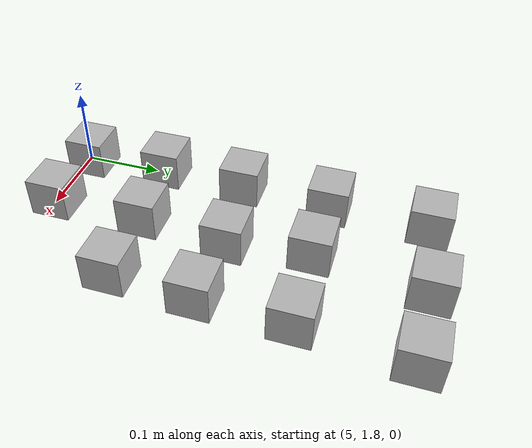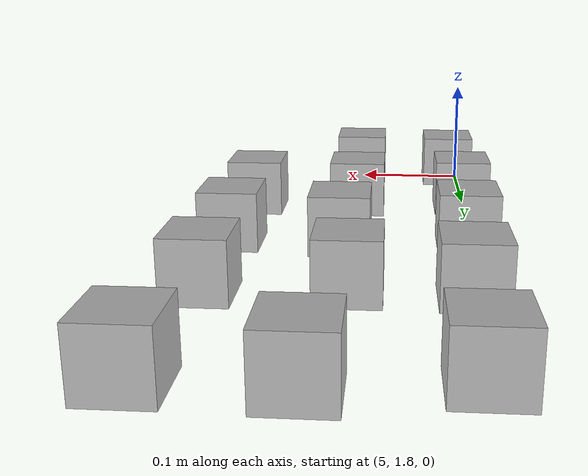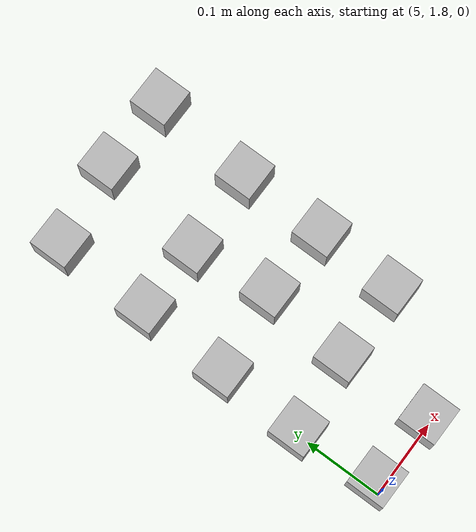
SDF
<sdf version="1.6">
 <world name="default">
  <model name="at0_12">
   <static>0</static>
   <link name="link">
    <inertial>
     <mass>0.01</mass>
     <inertia><ixx>4e-05</ixx><ixy>0</ixy><ixz>0</ixz><iyy>4e-05</iyy><iyz>0</iyz><izz>4e-05</izz></inertia>
    </inertial>
    <visual name="visual">
     <geometry><box><size>0.05 0.05 0.05</size></box></geometry>
     <material>
      <script>
       <uri>model://at0/materials/scripts</uri>
       <uri>model://at0/materials/textures</uri>
       <name>at0/Diffuse</name>
      </script>
     </material>
    </visual>
    <collision name="collision">
     <geometry><box><size>0.05 0.05 0.05</size></box></geometry>
     <surface><friction><ode><mu>0.8</mu><mu2>0.7</mu2></ode></friction></surface>
    </collision>
   </link>
   <pose>5.00629 2.0256 0.025 0 -0 0</pose>
  </model>
  <model name="at0_14">
   <static>0</static>
   <link name="link">
    <inertial>
     <mass>0.01</mass>
     <inertia><ixx>4e-05</ixx><ixy>0</ixy><ixz>0</ixz><iyy>4e-05</iyy><iyz>0</iyz><izz>4e-05</izz></inertia>
    </inertial>
    <visual name="visual">
     <geometry><box><size>0.05 0.05 0.05</size></box></geometry>
     <material>
      <script>
       <uri>model://at0/materials/scripts</uri>
       <uri>model://at0/materials/textures</uri>
       <name>at0/Diffuse</name>
      </script>
     </material>
    </visual>
    <collision name="collision">
     <geometry><box><size>0.05 0.05 0.05</size></box></geometry>
     <surface><friction><ode><mu>0.8</mu><mu2>0.7</mu2></ode></friction></surface>
    </collision>
   </link>
   <pose>5.11198 2.03767 0.025 0 -0 0</pose>
  </model>
  <model name="at0_16">
   <static>0</static>
   <link name="link">
    <inertial>
     <mass>0.01</mass>
     <inertia><ixx>4e-05</ixx><ixy>0</ixy><ixz>0</ixz><iyy>4e-05</iyy><iyz>0</iyz><izz>4e-05</izz></inertia>
    </inertial>
    <visual name="visual">
     <geometry><box><size>0.05 0.05 0.05</size></box></geometry>
     <material>
      <script>
       <uri>model://at0/materials/scripts</uri>
       <uri>model://at0/materials/textures</uri>
       <name>at0/Diffuse</name>
      </script>
     </material>
    </visual>
    <collision name="collision">
     <geometry><box><size>0.05 0.05 0.05</size></box></geometry>
     <surface><friction><ode><mu>0.8</mu><mu2>0.7</mu2></ode></friction></surface>
    </collision>
   </link>
   <pose>5.20401 2.03143 0.025 0 -0 0</pose>
  </model>
  <model name="at0_17">
   <static>0</static>
   <link name="link">
    <inertial>
     <mass>0.01</mass>
     <inertia><ixx>4e-05</ixx><ixy>0</ixy><ixz>0</ixz><iyy>4e-05</iyy><iyz>0</iyz><izz>4e-05</izz></inertia>
    </inertial>
    <visual name="visual">
     <geometry><box><size>0.05 0.05 0.05</size></box></geometry>
     <material>
      <script>
       <uri>model://at0/materials/scripts</uri>
       <uri>model://at0/materials/textures</uri>
       <name>at0/Diffuse</name>
      </script>
     </material>
    </visual>
    <collision name="collision">
     <geometry><box><size>0.05 0.05 0.05</size></box></geometry>
     <surface><friction><ode><mu>0.8</mu><mu2>0.7</mu2></ode></friction></surface>
    </collision>
   </link>
   <pose>5.00356 1.91692 0.025 0 -0 0</pose>
  </model>
  <model name="at0_18">
   <static>0</static>
   <link name="link">
    <inertial>
     <mass>0.01</mass>
     <inertia><ixx>4e-05</ixx><ixy>0</ixy><ixz>0</ixz><iyy>4e-05</iyy><iyz>0</iyz><izz>4e-05</izz></inertia>
    </inertial>
    <visual name="visual">
     <geometry><box><size>0.05 0.05 0.05</size></box></geometry>
     <material>
      <script>
       <uri>model://at0/materials/scripts</uri>
       <uri>model://at0/materials/textures</uri>
       <name>at0/Diffuse</name>
      </script>
     </material>
    </visual>
    <collision name="collision">
     <geometry><box><size>0.05 0.05 0.05</size></box></geometry>
     <surface><friction><ode><mu>0.8</mu><mu2>0.7</mu2></ode></friction></surface>
    </collision>
   </link>
   <pose>5.01128 2.14067 0.025 0 -0 0</pose>
  </model>
  <model name="at0_19">
   <static>0</static>
   <link name="link">
    <inertial>
     <mass>0.01</mass>
     <inertia><ixx>4e-05</ixx><ixy>0</ixy><ixz>0</ixz><iyy>4e-05</iyy><iyz>0</iyz><izz>4e-05</izz></inertia>
    </inertial>
    <visual name="visual">
     <geometry><box><size>0.05 0.05 0.05</size></box></geometry>
     <material>
      <script>
       <uri>model://at0/materials/scripts</uri>
       <uri>model://at0/materials/textures</uri>
       <name>at0/Diffuse</name>
      </script>
     </material>
    </visual>
    <collision name="collision">
     <geometry><box><size>0.05 0.05 0.05</size></box></geometry>
     <surface><friction><ode><mu>0.8</mu><mu2>0.7</mu2></ode></friction></surface>
    </collision>
   </link>
   <pose>5.01094 1.8122 0.025 0 -0 0</pose>
  </model>
  <model name="at0_20">
   <static>0</static>
   <link name="link">
    <inertial>
     <mass>0.01</mass>
     <inertia><ixx>4e-05</ixx><ixy>0</ixy><ixz>0</ixz><iyy>4e-05</iyy><iyz>0</iyz><izz>4e-05</izz></inertia>
    </inertial>
    <visual name="visual">
     <geometry><box><size>0.05 0.05 0.05</size></box></geometry>
     <material>
      <script>
       <uri>model://at0/materials/scripts</uri>
       <uri>model://at0/materials/textures</uri>
       <name>at0/Diffuse</name>
      </script>
     </material>
    </visual>
    <collision name="collision">
     <geometry><box><size>0.05 0.05 0.05</size></box></geometry>
     <surface><friction><ode><mu>0.8</mu><mu2>0.7</mu2></ode></friction></surface>
    </collision>
   </link>
   <pose>5.01438 2.26492 0.025 0 -0 0</pose>
  </model>
  <model name="at0_23">
   <static>0</static>
   <link name="link">
    <inertial>
     <mass>0.01</mass>
     <inertia><ixx>4e-05</ixx><ixy>0</ixy><ixz>0</ixz><iyy>4e-05</iyy><iyz>0</iyz><izz>4e-05</izz></inertia>
    </inertial>
    <visual name="visual">
     <geometry><box><size>0.05 0.05 0.05</size></box></geometry>
     <material>
      <script>
       <uri>model://at0/materials/scripts</uri>
       <uri>model://at0/materials/textures</uri>
       <name>at0/Diffuse</name>
      </script>
     </material>
    </visual>
    <collision name="collision">
     <geometry><box><size>0.05 0.05 0.05</size></box></geometry>
     <surface><friction><ode><mu>0.8</mu><mu2>0.7</mu2></ode></friction></surface>
    </collision>
   </link>
   <pose>5.1022 1.92591 0.025 0 -0 0</pose>
  </model>
  <model name="at0_27">
   <static>0</static>
   <link name="link">
    <inertial>
     <mass>0.01</mass>
     <inertia><ixx>4e-05</ixx><ixy>0</ixy><ixz>0</ixz><iyy>4e-05</iyy><iyz>0</iyz><izz>4e-05</izz></inertia>
    </inertial>
    <visual name="visual">
     <geometry><box><size>0.05 0.05 0.05</size></box></geometry>
     <material>
      <script>
       <uri>model://at0/materials/scripts</uri>
       <uri>model://at0/materials/textures</uri>
       <name>at0/Diffuse</name>
      </script>
     </material>
    </visual>
    <collision name="collision">
     <geometry><box><size>0.05 0.05 0.05</size></box></geometry>
     <surface><friction><ode><mu>0.8</mu><mu2>0.7</mu2></ode></friction></surface>
    </collision>
   </link>
   <pose>5.0998 2.13918 0.025 0 -0 0</pose>
  </model>
  <model name="at0_32">
   <static>0</static>
   <link name="link">
    <inertial>
     <mass>0.01</mass>
     <inertia><ixx>4e-05</ixx><ixy>0</ixy><ixz>0</ixz><iyy>4e-05</iyy><iyz>0</iyz><izz>4e-05</izz></inertia>
    </inertial>
    <visual name="visual">
     <geometry><box><size>0.05 0.05 0.05</size></box></geometry>
     <material>
      <script>
       <uri>model://at0/materials/scripts</uri>
       <uri>model://at0/materials/textures</uri>
       <name>at0/Diffuse</name>
      </script>
     </material>
    </visual>
    <collision name="collision">
     <geometry><box><size>0.05 0.05 0.05</size></box></geometry>
     <surface><friction><ode><mu>0.8</mu><mu2>0.7</mu2></ode></friction></surface>
    </collision>
   </link>
   <pose>5.11949 2.27753 0.025 0 -0 0</pose>
  </model>
  <model name="at0_33">
   <static>0</static>
   <link name="link">
    <inertial>
     <mass>0.01</mass>
     <inertia><ixx>4e-05</ixx><ixy>0</ixy><ixz>0</ixz><iyy>4e-05</iyy><iyz>0</iyz><izz>4e-05</izz></inertia>
    </inertial>
    <visual name="visual">
     <geometry><box><size>0.05 0.05 0.05</size></box></geometry>
     <material>
      <script>
       <uri>model://at0/materials/scripts</uri>
       <uri>model://at0/materials/textures</uri>
       <name>at0/Diffuse</name>
      </script>
     </material>
    </visual>
    <collision name="collision">
     <geometry><box><size>0.05 0.05 0.05</size></box></geometry>
     <surface><friction><ode><mu>0.8</mu><mu2>0.7</mu2></ode></friction></surface>
    </collision>
   </link>
   <pose>5.10254 1.80744 0.025 0 -0 0</pose>
  </model>
  <model name="at0_34">
   <static>0</static>
   <link name="link">
    <inertial>
     <mass>0.01</mass>
     <inertia><ixx>4e-05</ixx><ixy>0</ixy><ixz>0</ixz><iyy>4e-05</iyy><iyz>0</iyz><izz>4e-05</izz></inertia>
    </inertial>
    <visual name="visual">
     <geometry><box><size>0.05 0.05 0.05</size></box></geometry>
     <material>
      <script>
       <uri>model://at0/materials/scripts</uri>
       <uri>model://at0/materials/textures</uri>
       <name>at0/Diffuse</name>
      </script>
     </material>
    </visual>
    <collision name="collision">
     <geometry><box><size>0.05 0.05 0.05</size></box></geometry>
     <surface><friction><ode><mu>0.8</mu><mu2>0.7</mu2></ode></friction></surface>
    </collision>
   </link>
   <pose>5.20563 2.14353 0.025 0 -0 0</pose>
  </model>
  <model name="at0_35">
   <static>0</static>
   <link name="link">
    <inertial>
     <mass>0.01</mass>
     <inertia><ixx>4e-05</ixx><ixy>0</ixy><ixz>0</ixz><iyy>4e-05</iyy><iyz>0</iyz><izz>4e-05</izz></inertia>
    </inertial>
    <visual name="visual">
     <geometry><box><size>0.05 0.05 0.05</size></box></geometry>
     <material>
      <script>
       <uri>model://at0/materials/scripts</uri>
       <uri>model://at0/materials/textures</uri>
       <name>at0/Diffuse</name>
      </script>
     </material>
    </visual>
    <collision name="collision">
     <geometry><box><size>0.05 0.05 0.05</size></box></geometry>
     <surface><friction><ode><mu>0.8</mu><mu2>0.7</mu2></ode></friction></surface>
    </collision>
   </link>
   <pose>5.21715 2.27576 0.025 0 -0 0</pose>
  </model>
  <model name="at0_36">
   <static>0</static>
   <link name="link">
    <inertial>
     <mass>0.01</mass>
     <inertia><ixx>4e-05</ixx><ixy>0</ixy><ixz>0</ixz><iyy>4e-05</iyy><iyz>0</iyz><izz>4e-05</izz></inertia>
    </inertial>
    <visual name="visual">
     <geometry><box><size>0.05 0.05 0.05</size></box></geometry>
     <material>
      <script>
       <uri>model://at0/materials/scripts</uri>
       <uri>model://at0/materials/textures</uri>
       <name>at0/Diffuse</name>
      </script>
     </material>
    </visual>
    <collision name="collision">
     <geometry><box><size>0.05 0.05 0.05</size></box></geometry>
     <surface><friction><ode><mu>0.8</mu><mu2>0.7</mu2></ode></friction></surface>
    </collision>
   </link>
   <pose>5.19848 1.92752 0.025 0 -0 0</pose>
  </model>
 </world>
</sdf>
